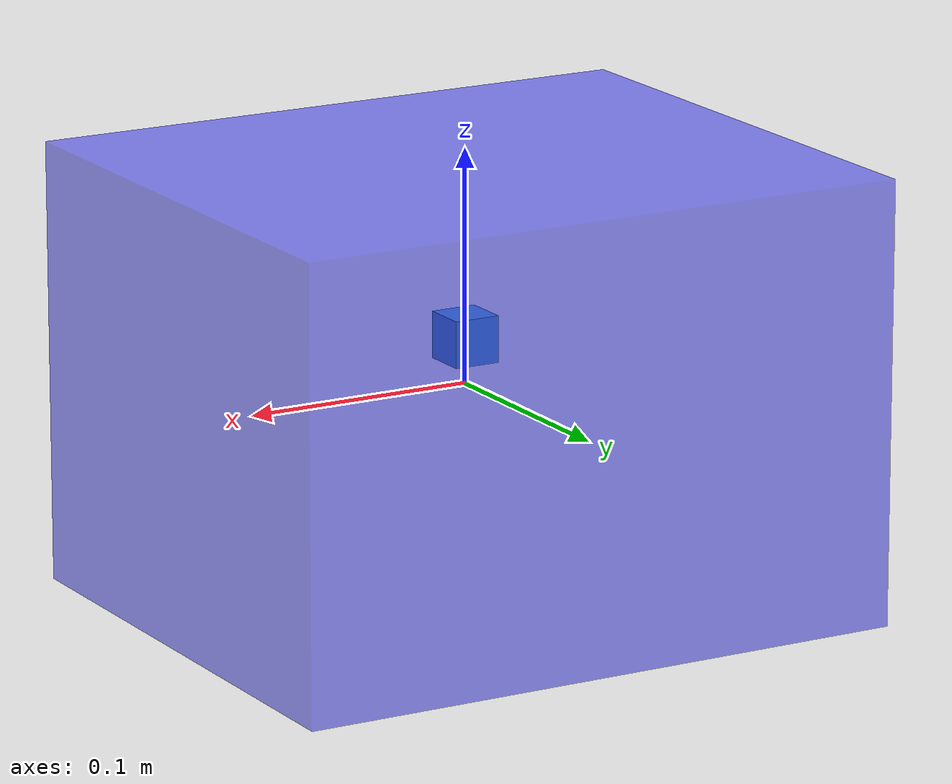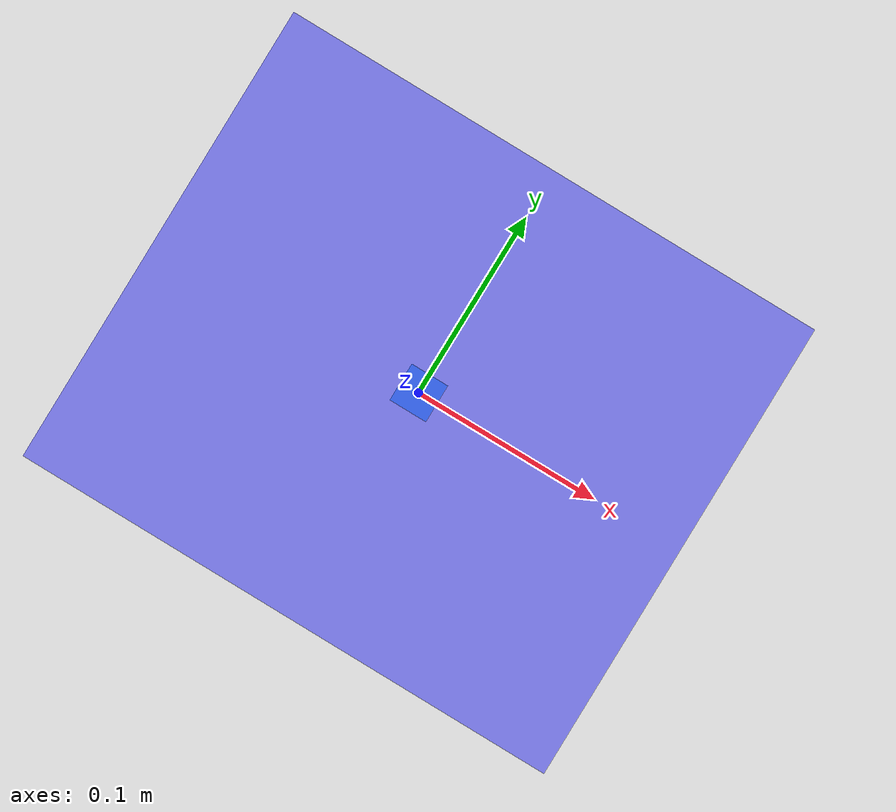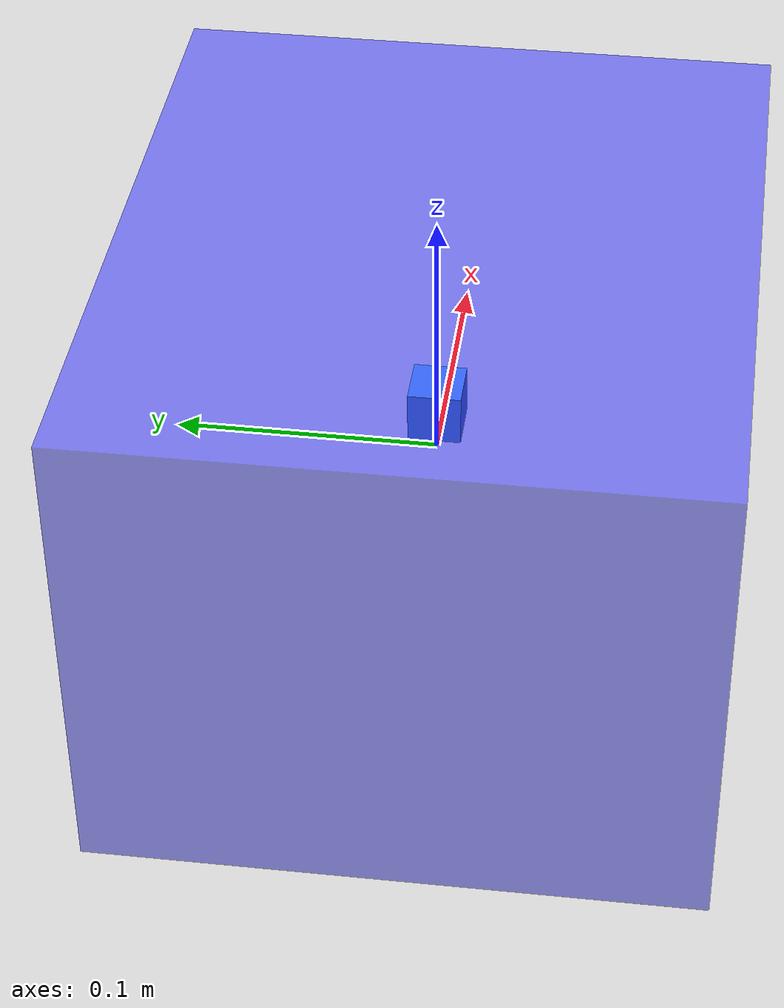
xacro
<?xml version="1.0"?>
<robot xmlns:xacro="http://www.ros.org/wiki/xacro" name="first_robot">
    <!-- 声明 base 模块 -->
    <xacro:macro name="base_link" params="xyz">
        <link name="base_link">
            <visual>
                <origin xyz="0 0 0" rpy="0 0 0" />
                <geometry>
                    <box size="${xyz}" />
                </geometry>
                <material name="blue">
                    <color rgba="0.1 0.1 1.0 0.5" />
                </material>
            </visual>
        </link>
    </xacro:macro>
    <!-- 声明 IMU 模块 -->
    <xacro:macro name="imu_link" params="imu_name xyz">
        <link name="${imu_name}_link">
            <visual>
                <origin xyz="0 0 0" rpy="0 0 0" />
                <geometry>
                    <box size="0.02 0.02 0.02" />
                </geometry>
            </visual>
            <material name="black">
                <color rgba="0 0 0 0.5" />
            </material>
        </link>
        <joint name="${imu_name}_joint" type="fixed">
            <parent link="base_link" />
            <child link="${imu_name}_link" />
            <origin xyz="${xyz}" />
        </joint>
    </xacro:macro>
    <!-- 传递参数调用 base_link 模块 -->
    <xacro:base_link xyz="0.27 0.23 0.19" />
    <!-- 传递参数调用 imu 模块 -->
    <xacro:imu_link imu_name="imu" xyz="0 0 0.02" />

</robot>
